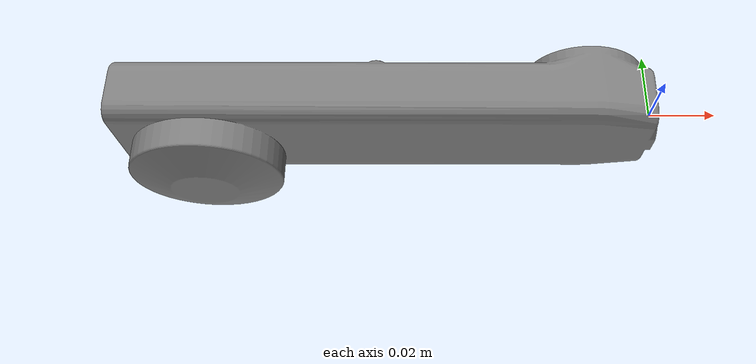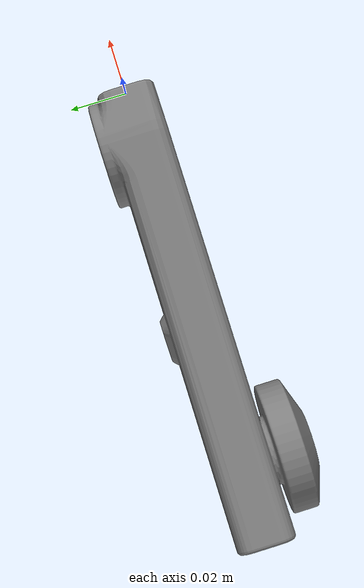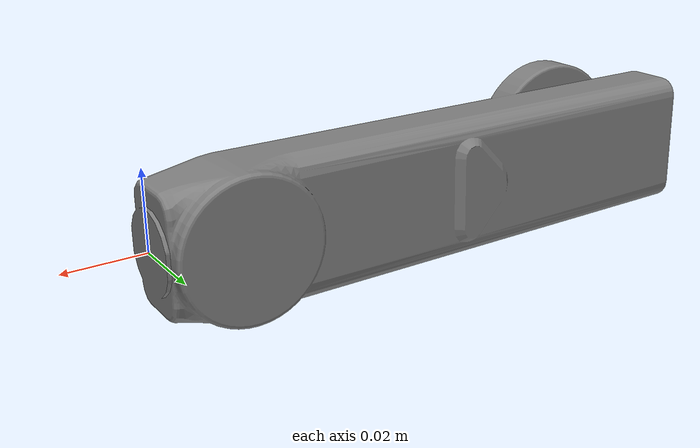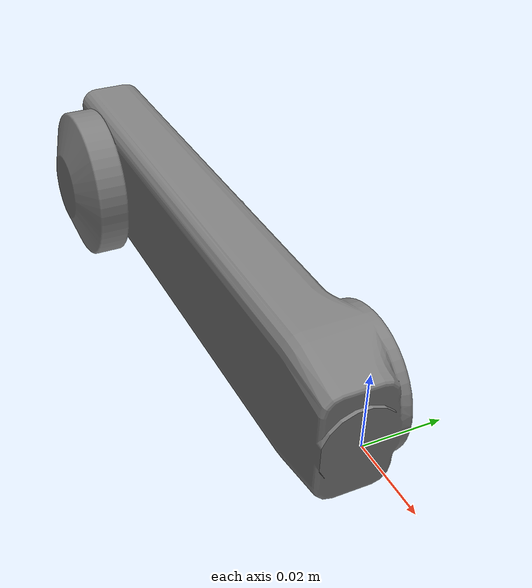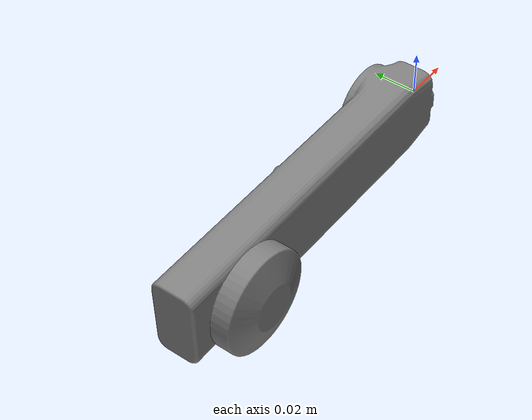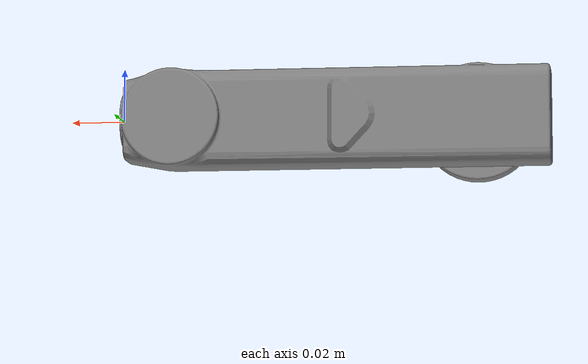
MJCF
<mujoco model="solo12_hip_fe_fl">
  <default>
    <default class="visual">
      <geom group="2" type="mesh" contype="0" conaffinity="0"/>
    </default>
    <default class="collision">
      <geom group="3" type="mesh"/>
    </default>
  </default>
  <asset>
    <mesh file="solo12_hip_fe_fl.obj"/>
    <mesh file="solo12_hip_fe_fl_collision_0.obj"/>
    <mesh file="solo12_hip_fe_fl_collision_1.obj"/>
    <mesh file="solo12_hip_fe_fl_collision_2.obj"/>
    <mesh file="solo12_hip_fe_fl_collision_3.obj"/>
    <mesh file="solo12_hip_fe_fl_collision_4.obj"/>
    <mesh file="solo12_hip_fe_fl_collision_5.obj"/>
    <mesh file="solo12_hip_fe_fl_collision_6.obj"/>
    <mesh file="solo12_hip_fe_fl_collision_7.obj"/>
  </asset>
  <worldbody>
    <body name="solo12_hip_fe_fl">
      <geom mesh="solo12_hip_fe_fl" class="visual"/>
      <geom mesh="solo12_hip_fe_fl_collision_0" class="collision"/>
      <geom mesh="solo12_hip_fe_fl_collision_1" class="collision"/>
      <geom mesh="solo12_hip_fe_fl_collision_2" class="collision"/>
      <geom mesh="solo12_hip_fe_fl_collision_3" class="collision"/>
      <geom mesh="solo12_hip_fe_fl_collision_4" class="collision"/>
      <geom mesh="solo12_hip_fe_fl_collision_5" class="collision"/>
      <geom mesh="solo12_hip_fe_fl_collision_6" class="collision"/>
      <geom mesh="solo12_hip_fe_fl_collision_7" class="collision"/>
    </body>
  </worldbody>
</mujoco>
